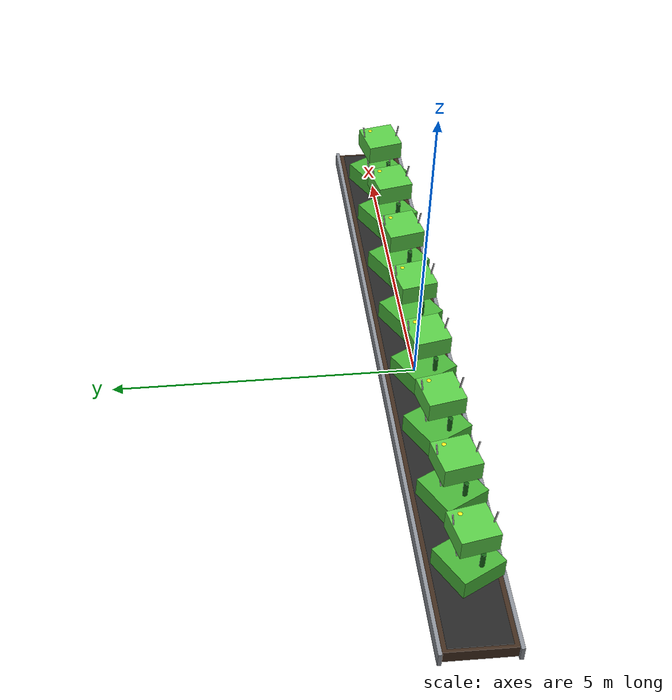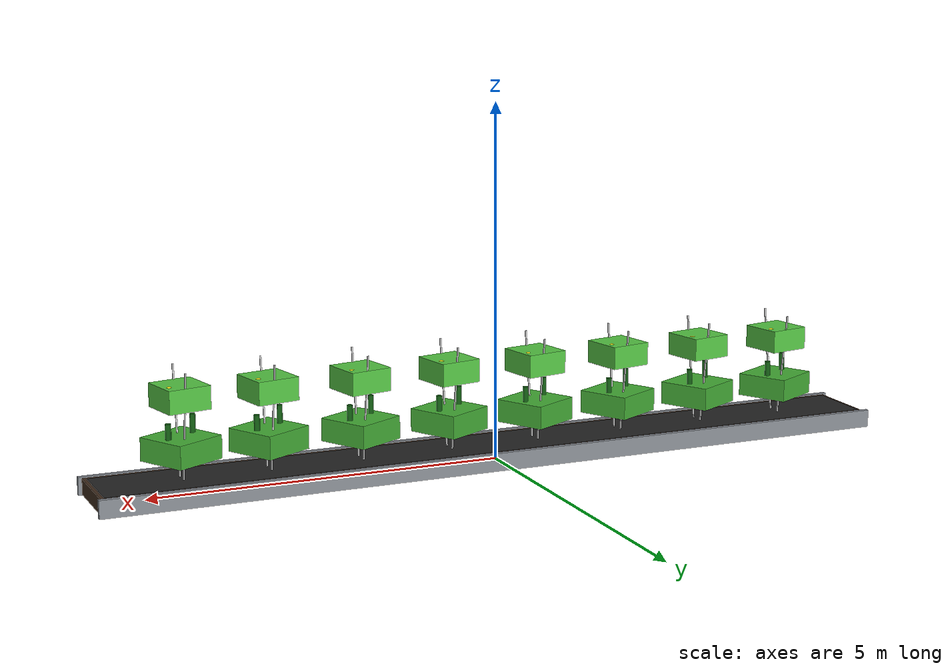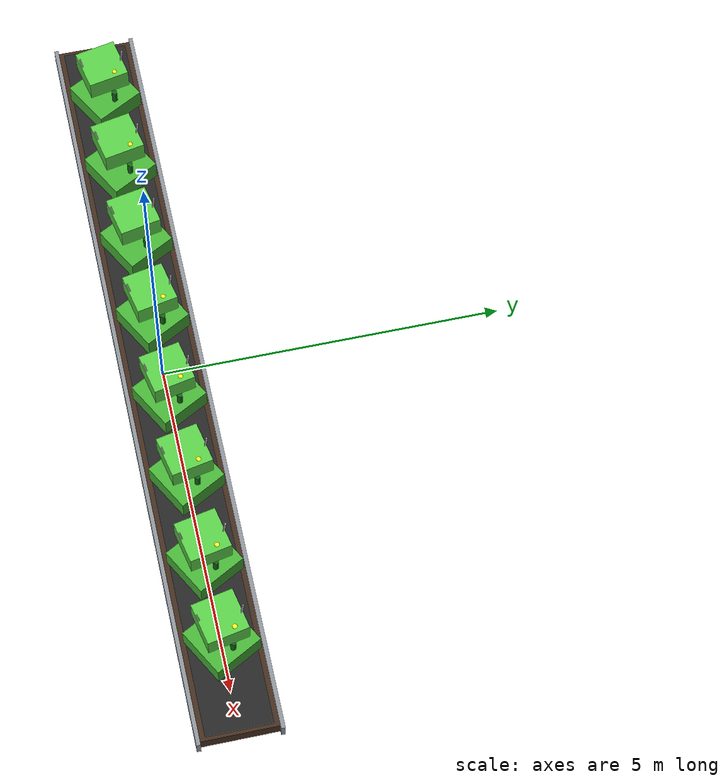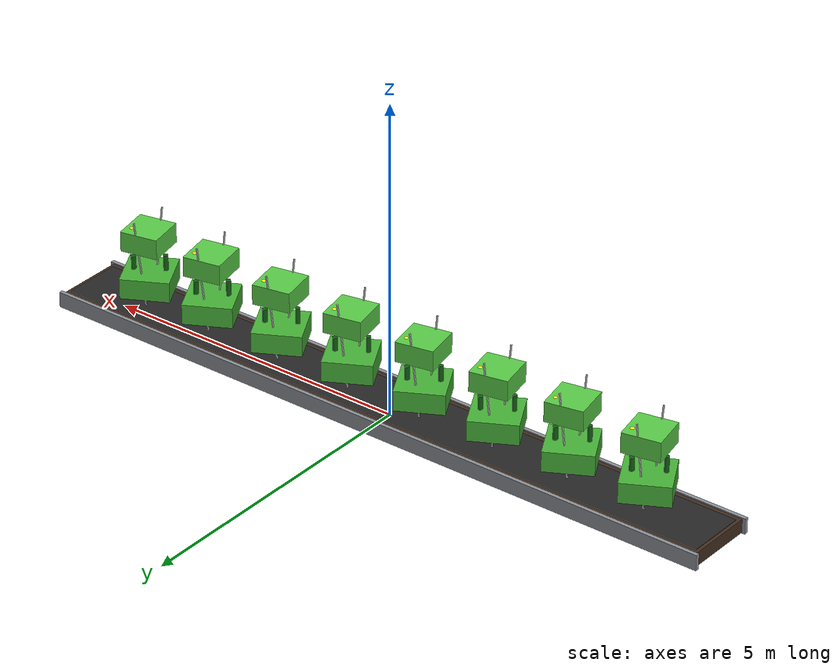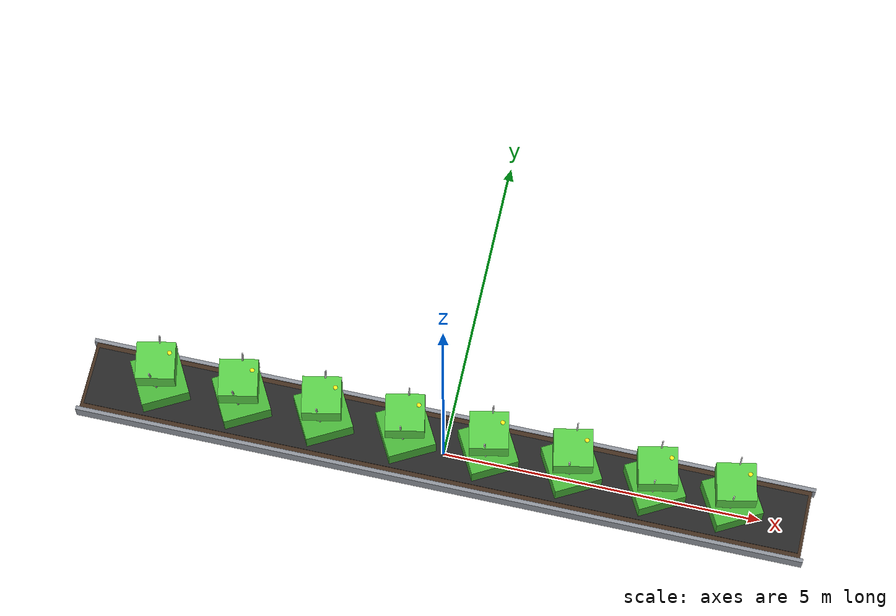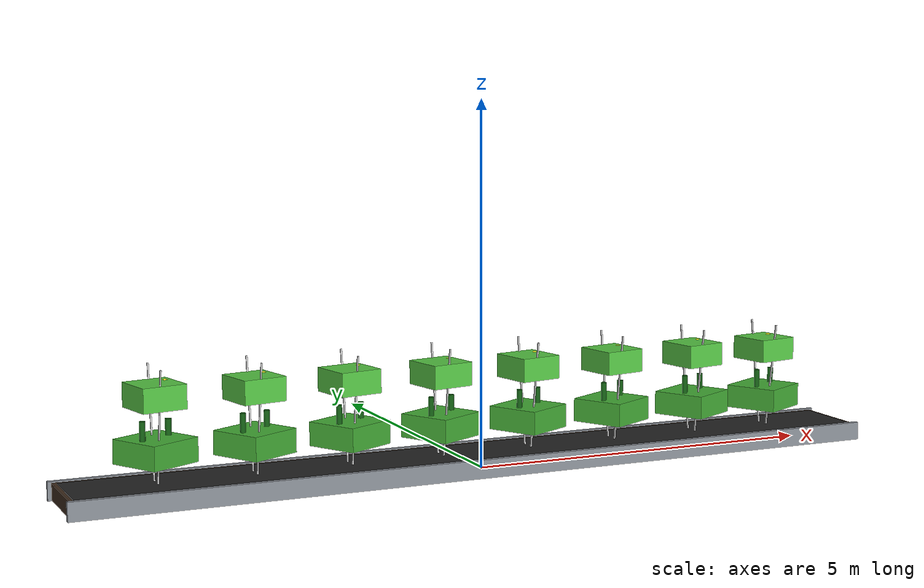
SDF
<?xml version="1.0" ?>
<sdf version="1.9">
  <model name="cucumber_bed">
    <static>true</static>
    <link name="bed_link">
      <pose>0 0 0 0 0 0</pose>
      <!-- Raised Bed Soil & Structure -->
      <visual name="soil_surface">
        <pose>0 0 0.12 0 0 0</pose>
        <geometry><box><size>11.4 1.1 0.22</size></box></geometry>
        <material><ambient>0.2 0.14 0.09 1</ambient><diffuse>0.26 0.18 0.12 1</diffuse></material>
      </visual>
      <visual name="mulch_strip">
        <pose>0 0 0.235 0 0 0</pose>
        <geometry><box><size>11.3 0.95 0.01</size></box></geometry>
        <material><ambient>0.1 0.1 0.1 1</ambient><diffuse>0.15 0.15 0.15 1</diffuse></material>
      </visual>
      <visual name="border_left">
        <pose>0 -0.58 0.125 0 0 0</pose>
        <geometry><box><size>11.5 0.06 0.25</size></box></geometry>
        <material><ambient>0.45 0.47 0.5 1</ambient><diffuse>0.55 0.57 0.6 1</diffuse></material>
      </visual>
      <visual name="border_right">
        <pose>0 0.58 0.125 0 0 0</pose>
        <geometry><box><size>11.5 0.06 0.25</size></box></geometry>
        <material><ambient>0.45 0.47 0.5 1</ambient><diffuse>0.55 0.57 0.6 1</diffuse></material>
      </visual>
      <visual name="stake_l_1"><pose>-4.5 -0.2 0.95 0.15 0 0</pose><geometry><box><size>0.02 0.02 1.55</size></box></geometry><material><ambient>0.7 0.7 0.7 1</ambient><diffuse>0.8 0.8 0.8 1</diffuse></material></visual>
      <visual name="stake_r_1"><pose>-4.5 0.2 0.95 -0.15 0 0</pose><geometry><box><size>0.02 0.02 1.55</size></box></geometry><material><ambient>0.7 0.7 0.7 1</ambient><diffuse>0.8 0.8 0.8 1</diffuse></material></visual>
      <visual name="canopy_low_1"><pose>-4.5 0 0.65 0 0 0.5</pose><geometry><box><size>0.75 0.75 0.32</size></box></geometry><material><ambient>0.2 0.55 0.15 1</ambient><diffuse>0.28 0.7 0.22 1</diffuse></material></visual>
      <visual name="canopy_top_1"><pose>-4.5 0 1.35 0 0 0.2</pose><geometry><box><size>0.6 0.6 0.32</size></box></geometry><material><ambient>0.25 0.62 0.2 1</ambient><diffuse>0.35 0.8 0.28 1</diffuse></material></visual>
      <visual name="cuc_flower_1_1"><pose>-4.32 0.16 1.45 0 0 0</pose><geometry><sphere><radius>0.07</radius></sphere></geometry><material><ambient>0.98 0.9 0.05 1</ambient><diffuse>1.0 0.95 0.1 1</diffuse></material></visual>
      <visual name="cuc_flower_2_1"><pose>-4.66 -0.14 1.42 0 0 0</pose><geometry><sphere><radius>0.065</radius></sphere></geometry><material><ambient>0.98 0.9 0.05 1</ambient><diffuse>1.0 0.95 0.1 1</diffuse></material></visual>
      <visual name="cuc_fruit_1_1"><pose>-4.3 0.12 0.85 0 0 0</pose><geometry><cylinder><radius>0.04</radius><length>0.34</length></cylinder></geometry><material><ambient>0.05 0.28 0.05 1</ambient><diffuse>0.08 0.38 0.08 1</diffuse></material></visual>
      <visual name="cuc_fruit_2_1"><pose>-4.7 -0.14 0.9 0 0 0</pose><geometry><cylinder><radius>0.038</radius><length>0.32</length></cylinder></geometry><material><ambient>0.05 0.28 0.05 1</ambient><diffuse>0.08 0.38 0.08 1</diffuse></material></visual>
      <visual name="stake_l_2"><pose>-3.2 -0.2 0.95 0.15 0 0</pose><geometry><box><size>0.02 0.02 1.55</size></box></geometry><material><ambient>0.7 0.7 0.7 1</ambient><diffuse>0.8 0.8 0.8 1</diffuse></material></visual>
      <visual name="stake_r_2"><pose>-3.2 0.2 0.95 -0.15 0 0</pose><geometry><box><size>0.02 0.02 1.55</size></box></geometry><material><ambient>0.7 0.7 0.7 1</ambient><diffuse>0.8 0.8 0.8 1</diffuse></material></visual>
      <visual name="canopy_low_2"><pose>-3.2 0 0.65 0 0 0.5</pose><geometry><box><size>0.75 0.75 0.32</size></box></geometry><material><ambient>0.2 0.55 0.15 1</ambient><diffuse>0.28 0.7 0.22 1</diffuse></material></visual>
      <visual name="canopy_top_2"><pose>-3.2 0 1.35 0 0 0.2</pose><geometry><box><size>0.6 0.6 0.32</size></box></geometry><material><ambient>0.25 0.62 0.2 1</ambient><diffuse>0.35 0.8 0.28 1</diffuse></material></visual>
      <visual name="cuc_flower_1_2"><pose>-3.02 0.16 1.45 0 0 0</pose><geometry><sphere><radius>0.07</radius></sphere></geometry><material><ambient>0.98 0.9 0.05 1</ambient><diffuse>1.0 0.95 0.1 1</diffuse></material></visual>
      <visual name="cuc_flower_2_2"><pose>-3.3600000000000003 -0.14 1.42 0 0 0</pose><geometry><sphere><radius>0.065</radius></sphere></geometry><material><ambient>0.98 0.9 0.05 1</ambient><diffuse>1.0 0.95 0.1 1</diffuse></material></visual>
      <visual name="cuc_fruit_1_2"><pose>-3.0 0.12 0.85 0 0 0</pose><geometry><cylinder><radius>0.04</radius><length>0.34</length></cylinder></geometry><material><ambient>0.05 0.28 0.05 1</ambient><diffuse>0.08 0.38 0.08 1</diffuse></material></visual>
      <visual name="cuc_fruit_2_2"><pose>-3.4000000000000004 -0.14 0.9 0 0 0</pose><geometry><cylinder><radius>0.038</radius><length>0.32</length></cylinder></geometry><material><ambient>0.05 0.28 0.05 1</ambient><diffuse>0.08 0.38 0.08 1</diffuse></material></visual>
      <visual name="stake_l_3"><pose>-1.9 -0.2 0.95 0.15 0 0</pose><geometry><box><size>0.02 0.02 1.55</size></box></geometry><material><ambient>0.7 0.7 0.7 1</ambient><diffuse>0.8 0.8 0.8 1</diffuse></material></visual>
      <visual name="stake_r_3"><pose>-1.9 0.2 0.95 -0.15 0 0</pose><geometry><box><size>0.02 0.02 1.55</size></box></geometry><material><ambient>0.7 0.7 0.7 1</ambient><diffuse>0.8 0.8 0.8 1</diffuse></material></visual>
      <visual name="canopy_low_3"><pose>-1.9 0 0.65 0 0 0.5</pose><geometry><box><size>0.75 0.75 0.32</size></box></geometry><material><ambient>0.2 0.55 0.15 1</ambient><diffuse>0.28 0.7 0.22 1</diffuse></material></visual>
      <visual name="canopy_top_3"><pose>-1.9 0 1.35 0 0 0.2</pose><geometry><box><size>0.6 0.6 0.32</size></box></geometry><material><ambient>0.25 0.62 0.2 1</ambient><diffuse>0.35 0.8 0.28 1</diffuse></material></visual>
      <visual name="cuc_flower_1_3"><pose>-1.72 0.16 1.45 0 0 0</pose><geometry><sphere><radius>0.07</radius></sphere></geometry><material><ambient>0.98 0.9 0.05 1</ambient><diffuse>1.0 0.95 0.1 1</diffuse></material></visual>
      <visual name="cuc_flower_2_3"><pose>-2.06 -0.14 1.42 0 0 0</pose><geometry><sphere><radius>0.065</radius></sphere></geometry><material><ambient>0.98 0.9 0.05 1</ambient><diffuse>1.0 0.95 0.1 1</diffuse></material></visual>
      <visual name="cuc_fruit_1_3"><pose>-1.7 0.12 0.85 0 0 0</pose><geometry><cylinder><radius>0.04</radius><length>0.34</length></cylinder></geometry><material><ambient>0.05 0.28 0.05 1</ambient><diffuse>0.08 0.38 0.08 1</diffuse></material></visual>
      <visual name="cuc_fruit_2_3"><pose>-2.1 -0.14 0.9 0 0 0</pose><geometry><cylinder><radius>0.038</radius><length>0.32</length></cylinder></geometry><material><ambient>0.05 0.28 0.05 1</ambient><diffuse>0.08 0.38 0.08 1</diffuse></material></visual>
      <visual name="stake_l_4"><pose>-0.6 -0.2 0.95 0.15 0 0</pose><geometry><box><size>0.02 0.02 1.55</size></box></geometry><material><ambient>0.7 0.7 0.7 1</ambient><diffuse>0.8 0.8 0.8 1</diffuse></material></visual>
      <visual name="stake_r_4"><pose>-0.6 0.2 0.95 -0.15 0 0</pose><geometry><box><size>0.02 0.02 1.55</size></box></geometry><material><ambient>0.7 0.7 0.7 1</ambient><diffuse>0.8 0.8 0.8 1</diffuse></material></visual>
      <visual name="canopy_low_4"><pose>-0.6 0 0.65 0 0 0.5</pose><geometry><box><size>0.75 0.75 0.32</size></box></geometry><material><ambient>0.2 0.55 0.15 1</ambient><diffuse>0.28 0.7 0.22 1</diffuse></material></visual>
      <visual name="canopy_top_4"><pose>-0.6 0 1.35 0 0 0.2</pose><geometry><box><size>0.6 0.6 0.32</size></box></geometry><material><ambient>0.25 0.62 0.2 1</ambient><diffuse>0.35 0.8 0.28 1</diffuse></material></visual>
      <visual name="cuc_flower_1_4"><pose>-0.42 0.16 1.45 0 0 0</pose><geometry><sphere><radius>0.07</radius></sphere></geometry><material><ambient>0.98 0.9 0.05 1</ambient><diffuse>1.0 0.95 0.1 1</diffuse></material></visual>
      <visual name="cuc_flower_2_4"><pose>-0.76 -0.14 1.42 0 0 0</pose><geometry><sphere><radius>0.065</radius></sphere></geometry><material><ambient>0.98 0.9 0.05 1</ambient><diffuse>1.0 0.95 0.1 1</diffuse></material></visual>
      <visual name="cuc_fruit_1_4"><pose>-0.39999999999999997 0.12 0.85 0 0 0</pose><geometry><cylinder><radius>0.04</radius><length>0.34</length></cylinder></geometry><material><ambient>0.05 0.28 0.05 1</ambient><diffuse>0.08 0.38 0.08 1</diffuse></material></visual>
      <visual name="cuc_fruit_2_4"><pose>-0.8 -0.14 0.9 0 0 0</pose><geometry><cylinder><radius>0.038</radius><length>0.32</length></cylinder></geometry><material><ambient>0.05 0.28 0.05 1</ambient><diffuse>0.08 0.38 0.08 1</diffuse></material></visual>
      <visual name="stake_l_5"><pose>0.7 -0.2 0.95 0.15 0 0</pose><geometry><box><size>0.02 0.02 1.55</size></box></geometry><material><ambient>0.7 0.7 0.7 1</ambient><diffuse>0.8 0.8 0.8 1</diffuse></material></visual>
      <visual name="stake_r_5"><pose>0.7 0.2 0.95 -0.15 0 0</pose><geometry><box><size>0.02 0.02 1.55</size></box></geometry><material><ambient>0.7 0.7 0.7 1</ambient><diffuse>0.8 0.8 0.8 1</diffuse></material></visual>
      <visual name="canopy_low_5"><pose>0.7 0 0.65 0 0 0.5</pose><geometry><box><size>0.75 0.75 0.32</size></box></geometry><material><ambient>0.2 0.55 0.15 1</ambient><diffuse>0.28 0.7 0.22 1</diffuse></material></visual>
      <visual name="canopy_top_5"><pose>0.7 0 1.35 0 0 0.2</pose><geometry><box><size>0.6 0.6 0.32</size></box></geometry><material><ambient>0.25 0.62 0.2 1</ambient><diffuse>0.35 0.8 0.28 1</diffuse></material></visual>
      <visual name="cuc_flower_1_5"><pose>0.8799999999999999 0.16 1.45 0 0 0</pose><geometry><sphere><radius>0.07</radius></sphere></geometry><material><ambient>0.98 0.9 0.05 1</ambient><diffuse>1.0 0.95 0.1 1</diffuse></material></visual>
      <visual name="cuc_flower_2_5"><pose>0.5399999999999999 -0.14 1.42 0 0 0</pose><geometry><sphere><radius>0.065</radius></sphere></geometry><material><ambient>0.98 0.9 0.05 1</ambient><diffuse>1.0 0.95 0.1 1</diffuse></material></visual>
      <visual name="cuc_fruit_1_5"><pose>0.8999999999999999 0.12 0.85 0 0 0</pose><geometry><cylinder><radius>0.04</radius><length>0.34</length></cylinder></geometry><material><ambient>0.05 0.28 0.05 1</ambient><diffuse>0.08 0.38 0.08 1</diffuse></material></visual>
      <visual name="cuc_fruit_2_5"><pose>0.49999999999999994 -0.14 0.9 0 0 0</pose><geometry><cylinder><radius>0.038</radius><length>0.32</length></cylinder></geometry><material><ambient>0.05 0.28 0.05 1</ambient><diffuse>0.08 0.38 0.08 1</diffuse></material></visual>
      <visual name="stake_l_6"><pose>2.0 -0.2 0.95 0.15 0 0</pose><geometry><box><size>0.02 0.02 1.55</size></box></geometry><material><ambient>0.7 0.7 0.7 1</ambient><diffuse>0.8 0.8 0.8 1</diffuse></material></visual>
      <visual name="stake_r_6"><pose>2.0 0.2 0.95 -0.15 0 0</pose><geometry><box><size>0.02 0.02 1.55</size></box></geometry><material><ambient>0.7 0.7 0.7 1</ambient><diffuse>0.8 0.8 0.8 1</diffuse></material></visual>
      <visual name="canopy_low_6"><pose>2.0 0 0.65 0 0 0.5</pose><geometry><box><size>0.75 0.75 0.32</size></box></geometry><material><ambient>0.2 0.55 0.15 1</ambient><diffuse>0.28 0.7 0.22 1</diffuse></material></visual>
      <visual name="canopy_top_6"><pose>2.0 0 1.35 0 0 0.2</pose><geometry><box><size>0.6 0.6 0.32</size></box></geometry><material><ambient>0.25 0.62 0.2 1</ambient><diffuse>0.35 0.8 0.28 1</diffuse></material></visual>
      <visual name="cuc_flower_1_6"><pose>2.18 0.16 1.45 0 0 0</pose><geometry><sphere><radius>0.07</radius></sphere></geometry><material><ambient>0.98 0.9 0.05 1</ambient><diffuse>1.0 0.95 0.1 1</diffuse></material></visual>
      <visual name="cuc_flower_2_6"><pose>1.84 -0.14 1.42 0 0 0</pose><geometry><sphere><radius>0.065</radius></sphere></geometry><material><ambient>0.98 0.9 0.05 1</ambient><diffuse>1.0 0.95 0.1 1</diffuse></material></visual>
      <visual name="cuc_fruit_1_6"><pose>2.2 0.12 0.85 0 0 0</pose><geometry><cylinder><radius>0.04</radius><length>0.34</length></cylinder></geometry><material><ambient>0.05 0.28 0.05 1</ambient><diffuse>0.08 0.38 0.08 1</diffuse></material></visual>
      <visual name="cuc_fruit_2_6"><pose>1.8 -0.14 0.9 0 0 0</pose><geometry><cylinder><radius>0.038</radius><length>0.32</length></cylinder></geometry><material><ambient>0.05 0.28 0.05 1</ambient><diffuse>0.08 0.38 0.08 1</diffuse></material></visual>
      <visual name="stake_l_7"><pose>3.3 -0.2 0.95 0.15 0 0</pose><geometry><box><size>0.02 0.02 1.55</size></box></geometry><material><ambient>0.7 0.7 0.7 1</ambient><diffuse>0.8 0.8 0.8 1</diffuse></material></visual>
      <visual name="stake_r_7"><pose>3.3 0.2 0.95 -0.15 0 0</pose><geometry><box><size>0.02 0.02 1.55</size></box></geometry><material><ambient>0.7 0.7 0.7 1</ambient><diffuse>0.8 0.8 0.8 1</diffuse></material></visual>
      <visual name="canopy_low_7"><pose>3.3 0 0.65 0 0 0.5</pose><geometry><box><size>0.75 0.75 0.32</size></box></geometry><material><ambient>0.2 0.55 0.15 1</ambient><diffuse>0.28 0.7 0.22 1</diffuse></material></visual>
      <visual name="canopy_top_7"><pose>3.3 0 1.35 0 0 0.2</pose><geometry><box><size>0.6 0.6 0.32</size></box></geometry><material><ambient>0.25 0.62 0.2 1</ambient><diffuse>0.35 0.8 0.28 1</diffuse></material></visual>
      <visual name="cuc_flower_1_7"><pose>3.48 0.16 1.45 0 0 0</pose><geometry><sphere><radius>0.07</radius></sphere></geometry><material><ambient>0.98 0.9 0.05 1</ambient><diffuse>1.0 0.95 0.1 1</diffuse></material></visual>
      <visual name="cuc_flower_2_7"><pose>3.1399999999999997 -0.14 1.42 0 0 0</pose><geometry><sphere><radius>0.065</radius></sphere></geometry><material><ambient>0.98 0.9 0.05 1</ambient><diffuse>1.0 0.95 0.1 1</diffuse></material></visual>
      <visual name="cuc_fruit_1_7"><pose>3.5 0.12 0.85 0 0 0</pose><geometry><cylinder><radius>0.04</radius><length>0.34</length></cylinder></geometry><material><ambient>0.05 0.28 0.05 1</ambient><diffuse>0.08 0.38 0.08 1</diffuse></material></visual>
      <visual name="cuc_fruit_2_7"><pose>3.0999999999999996 -0.14 0.9 0 0 0</pose><geometry><cylinder><radius>0.038</radius><length>0.32</length></cylinder></geometry><material><ambient>0.05 0.28 0.05 1</ambient><diffuse>0.08 0.38 0.08 1</diffuse></material></visual>
      <visual name="stake_l_8"><pose>4.5 -0.2 0.95 0.15 0 0</pose><geometry><box><size>0.02 0.02 1.55</size></box></geometry><material><ambient>0.7 0.7 0.7 1</ambient><diffuse>0.8 0.8 0.8 1</diffuse></material></visual>
      <visual name="stake_r_8"><pose>4.5 0.2 0.95 -0.15 0 0</pose><geometry><box><size>0.02 0.02 1.55</size></box></geometry><material><ambient>0.7 0.7 0.7 1</ambient><diffuse>0.8 0.8 0.8 1</diffuse></material></visual>
      <visual name="canopy_low_8"><pose>4.5 0 0.65 0 0 0.5</pose><geometry><box><size>0.75 0.75 0.32</size></box></geometry><material><ambient>0.2 0.55 0.15 1</ambient><diffuse>0.28 0.7 0.22 1</diffuse></material></visual>
      <visual name="canopy_top_8"><pose>4.5 0 1.35 0 0 0.2</pose><geometry><box><size>0.6 0.6 0.32</size></box></geometry><material><ambient>0.25 0.62 0.2 1</ambient><diffuse>0.35 0.8 0.28 1</diffuse></material></visual>
      <visual name="cuc_flower_1_8"><pose>4.68 0.16 1.45 0 0 0</pose><geometry><sphere><radius>0.07</radius></sphere></geometry><material><ambient>0.98 0.9 0.05 1</ambient><diffuse>1.0 0.95 0.1 1</diffuse></material></visual>
      <visual name="cuc_flower_2_8"><pose>4.34 -0.14 1.42 0 0 0</pose><geometry><sphere><radius>0.065</radius></sphere></geometry><material><ambient>0.98 0.9 0.05 1</ambient><diffuse>1.0 0.95 0.1 1</diffuse></material></visual>
      <visual name="cuc_fruit_1_8"><pose>4.7 0.12 0.85 0 0 0</pose><geometry><cylinder><radius>0.04</radius><length>0.34</length></cylinder></geometry><material><ambient>0.05 0.28 0.05 1</ambient><diffuse>0.08 0.38 0.08 1</diffuse></material></visual>
      <visual name="cuc_fruit_2_8"><pose>4.3 -0.14 0.9 0 0 0</pose><geometry><cylinder><radius>0.038</radius><length>0.32</length></cylinder></geometry><material><ambient>0.05 0.28 0.05 1</ambient><diffuse>0.08 0.38 0.08 1</diffuse></material></visual>
      <!-- Single Bed Physics Collision -->
      <collision name="bed_col">
        <pose>0 0 0.5 0 0 0</pose>
        <geometry><box><size>11.5 1.2 1.0</size></box></geometry>
      </collision>
    </link>
  </model>
</sdf>
